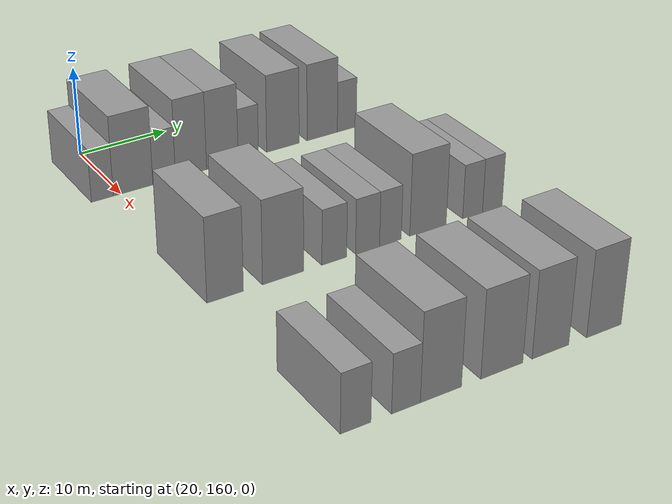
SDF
<sdf version="1.6">
 <world name="default">
  <model name="building_94">
   <static>1</static>
   <pose>25.0000 157.9676 0 0.000000 0.000000 0.000000</pose>
   <link name="link">
    <pose>0 0 3.00 0 0 0</pose>
    <collision name="collision"><geometry><box><size>10.0000 2.4155 6.0000</size></box></geometry></collision>
    <visual name="visual">
     <cast_shadows>0</cast_shadows>
     <geometry><box><size>10.0000 2.4155 6.0000</size></box></geometry>
     <material>
      <script>
       <uri>model://grey_wall/materials/scripts</uri>
       <uri>model://grey_wall/materials/textures</uri>
       <name>vrc/grey_wall</name>
      </script>
     </material>
    </visual>
   </link>
  </model>
  <model name="building_95">
   <static>1</static>
   <pose>25.0000 161.3960 0 0.000000 0.000000 0.000000</pose>
   <link name="link">
    <pose>0 0 4.50 0 0 0</pose>
    <collision name="collision"><geometry><box><size>10.0000 4.4412 9.0000</size></box></geometry></collision>
    <visual name="visual">
     <cast_shadows>0</cast_shadows>
     <geometry><box><size>10.0000 4.4412 9.0000</size></box></geometry>
     <material>
      <script>
       <uri>model://grey_wall/materials/scripts</uri>
       <uri>model://grey_wall/materials/textures</uri>
       <name>vrc/grey_wall</name>
      </script>
     </material>
    </visual>
   </link>
  </model>
  <model name="building_96">
   <static>1</static>
   <pose>25.0000 164.9149 0 0.000000 0.000000 0.000000</pose>
   <link name="link">
    <pose>0 0 3.00 0 0 0</pose>
    <collision name="collision"><geometry><box><size>10.0000 2.5966 6.0000</size></box></geometry></collision>
    <visual name="visual">
     <cast_shadows>0</cast_shadows>
     <geometry><box><size>10.0000 2.5966 6.0000</size></box></geometry>
     <material>
      <script>
       <uri>model://grey_wall/materials/scripts</uri>
       <uri>model://grey_wall/materials/textures</uri>
       <name>vrc/grey_wall</name>
      </script>
     </material>
    </visual>
   </link>
  </model>
  <model name="building_97">
   <static>1</static>
   <pose>25.0000 168.0224 0 0.000000 0.000000 0.000000</pose>
   <link name="link">
    <pose>0 0 4.50 0 0 0</pose>
    <collision name="collision"><geometry><box><size>10.0000 3.6184 9.0000</size></box></geometry></collision>
    <visual name="visual">
     <cast_shadows>0</cast_shadows>
     <geometry><box><size>10.0000 3.6184 9.0000</size></box></geometry>
     <material>
      <script>
       <uri>model://grey_wall/materials/scripts</uri>
       <uri>model://grey_wall/materials/textures</uri>
       <name>vrc/grey_wall</name>
      </script>
     </material>
    </visual>
   </link>
  </model>
  <model name="building_98">
   <static>1</static>
   <pose>25.0000 171.7162 0 0.000000 0.000000 0.000000</pose>
   <link name="link">
    <pose>0 0 4.50 0 0 0</pose>
    <collision name="collision"><geometry><box><size>10.0000 3.7693 9.0000</size></box></geometry></collision>
    <visual name="visual">
     <cast_shadows>0</cast_shadows>
     <geometry><box><size>10.0000 3.7693 9.0000</size></box></geometry>
     <material>
      <script>
       <uri>model://grey_wall/materials/scripts</uri>
       <uri>model://grey_wall/materials/textures</uri>
       <name>vrc/grey_wall</name>
      </script>
     </material>
    </visual>
   </link>
  </model>
  <model name="building_99">
   <static>1</static>
   <pose>25.0000 174.8299 0 0.000000 0.000000 0.000000</pose>
   <link name="link">
    <pose>0 0 3.00 0 0 0</pose>
    <collision name="collision"><geometry><box><size>10.0000 2.4581 6.0000</size></box></geometry></collision>
    <visual name="visual">
     <cast_shadows>0</cast_shadows>
     <geometry><box><size>10.0000 2.4581 6.0000</size></box></geometry>
     <material>
      <script>
       <uri>model://grey_wall/materials/scripts</uri>
       <uri>model://grey_wall/materials/textures</uri>
       <name>vrc/grey_wall</name>
      </script>
     </material>
    </visual>
   </link>
  </model>
  <model name="building_100">
   <static>1</static>
   <pose>25.0000 179.0702 0 0.000000 0.000000 0.000000</pose>
   <link name="link">
    <pose>0 0 4.50 0 0 0</pose>
    <collision name="collision"><geometry><box><size>10.0000 4.0226 9.0000</size></box></geometry></collision>
    <visual name="visual">
     <cast_shadows>0</cast_shadows>
     <geometry><box><size>10.0000 4.0226 9.0000</size></box></geometry>
     <material>
      <script>
       <uri>model://grey_wall/materials/scripts</uri>
       <uri>model://grey_wall/materials/textures</uri>
       <name>vrc/grey_wall</name>
      </script>
     </material>
    </visual>
   </link>
  </model>
  <model name="building_101">
   <static>1</static>
   <pose>25.0000 184.0114 0 0.000000 0.000000 0.000000</pose>
   <link name="link">
    <pose>0 0 4.50 0 0 0</pose>
    <collision name="collision"><geometry><box><size>10.0000 3.8598 9.0000</size></box></geometry></collision>
    <visual name="visual">
     <cast_shadows>0</cast_shadows>
     <geometry><box><size>10.0000 3.8598 9.0000</size></box></geometry>
     <material>
      <script>
       <uri>model://grey_wall/materials/scripts</uri>
       <uri>model://grey_wall/materials/textures</uri>
       <name>vrc/grey_wall</name>
      </script>
     </material>
    </visual>
   </link>
  </model>
  <model name="building_102">
   <static>1</static>
   <pose>25.0000 187.1695 0 0.000000 0.000000 0.000000</pose>
   <link name="link">
    <pose>0 0 3.00 0 0 0</pose>
    <collision name="collision"><geometry><box><size>10.0000 2.4564 6.0000</size></box></geometry></collision>
    <visual name="visual">
     <cast_shadows>0</cast_shadows>
     <geometry><box><size>10.0000 2.4564 6.0000</size></box></geometry>
     <material>
      <script>
       <uri>model://grey_wall/materials/scripts</uri>
       <uri>model://grey_wall/materials/textures</uri>
       <name>vrc/grey_wall</name>
      </script>
     </material>
    </visual>
   </link>
  </model>
  <model name="building_218">
   <static>1</static>
   <pose>47.0000 160.0620 0 0.000000 0.000000 0.000000</pose>
   <link name="link">
    <pose>0 0 4.50 0 0 0</pose>
    <collision name="collision"><geometry><box><size>10.0000 3.7848 9.0000</size></box></geometry></collision>
    <visual name="visual">
     <cast_shadows>0</cast_shadows>
     <geometry><box><size>10.0000 3.7848 9.0000</size></box></geometry>
     <material>
      <script>
       <uri>model://grey_wall/materials/scripts</uri>
       <uri>model://grey_wall/materials/textures</uri>
       <name>vrc/grey_wall</name>
      </script>
     </material>
    </visual>
   </link>
  </model>
  <model name="building_219">
   <static>1</static>
   <pose>47.0000 166.1638 0 0.000000 0.000000 0.000000</pose>
   <link name="link">
    <pose>0 0 4.50 0 0 0</pose>
    <collision name="collision"><geometry><box><size>10.0000 4.4187 9.0000</size></box></geometry></collision>
    <visual name="visual">
     <cast_shadows>0</cast_shadows>
     <geometry><box><size>10.0000 4.4187 9.0000</size></box></geometry>
     <material>
      <script>
       <uri>model://grey_wall/materials/scripts</uri>
       <uri>model://grey_wall/materials/textures</uri>
       <name>vrc/grey_wall</name>
      </script>
     </material>
    </visual>
   </link>
  </model>
  <model name="building_220">
   <static>1</static>
   <pose>47.0000 171.7502 0 0.000000 0.000000 0.000000</pose>
   <link name="link">
    <pose>0 0 3.00 0 0 0</pose>
    <collision name="collision"><geometry><box><size>10.0000 2.7543 6.0000</size></box></geometry></collision>
    <visual name="visual">
     <cast_shadows>0</cast_shadows>
     <geometry><box><size>10.0000 2.7543 6.0000</size></box></geometry>
     <material>
      <script>
       <uri>model://grey_wall/materials/scripts</uri>
       <uri>model://grey_wall/materials/textures</uri>
       <name>vrc/grey_wall</name>
      </script>
     </material>
    </visual>
   </link>
  </model>
  <model name="building_221">
   <static>1</static>
   <pose>47.0000 175.4920 0 0.000000 0.000000 0.000000</pose>
   <link name="link">
    <pose>0 0 3.00 0 0 0</pose>
    <collision name="collision"><geometry><box><size>10.0000 2.7292 6.0000</size></box></geometry></collision>
    <visual name="visual">
     <cast_shadows>0</cast_shadows>
     <geometry><box><size>10.0000 2.7292 6.0000</size></box></geometry>
     <material>
      <script>
       <uri>model://grey_wall/materials/scripts</uri>
       <uri>model://grey_wall/materials/textures</uri>
       <name>vrc/grey_wall</name>
      </script>
     </material>
    </visual>
   </link>
  </model>
  <model name="building_222">
   <static>1</static>
   <pose>47.0000 178.1100 0 0.000000 0.000000 0.000000</pose>
   <link name="link">
    <pose>0 0 3.00 0 0 0</pose>
    <collision name="collision"><geometry><box><size>10.0000 2.5068 6.0000</size></box></geometry></collision>
    <visual name="visual">
     <cast_shadows>0</cast_shadows>
     <geometry><box><size>10.0000 2.5068 6.0000</size></box></geometry>
     <material>
      <script>
       <uri>model://grey_wall/materials/scripts</uri>
       <uri>model://grey_wall/materials/textures</uri>
       <name>vrc/grey_wall</name>
      </script>
     </material>
    </visual>
   </link>
  </model>
  <model name="building_223">
   <static>1</static>
   <pose>47.0000 182.5260 0 0.000000 0.000000 0.000000</pose>
   <link name="link">
    <pose>0 0 4.50 0 0 0</pose>
    <collision name="collision"><geometry><box><size>10.0000 4.3251 9.0000</size></box></geometry></collision>
    <visual name="visual">
     <cast_shadows>0</cast_shadows>
     <geometry><box><size>10.0000 4.3251 9.0000</size></box></geometry>
     <material>
      <script>
       <uri>model://grey_wall/materials/scripts</uri>
       <uri>model://grey_wall/materials/textures</uri>
       <name>vrc/grey_wall</name>
      </script>
     </material>
    </visual>
   </link>
  </model>
  <model name="building_224">
   <static>1</static>
   <pose>47.0000 187.9058 0 0.000000 0.000000 0.000000</pose>
   <link name="link">
    <pose>0 0 3.00 0 0 0</pose>
    <collision name="collision"><geometry><box><size>10.0000 2.4345 6.0000</size></box></geometry></collision>
    <visual name="visual">
     <cast_shadows>0</cast_shadows>
     <geometry><box><size>10.0000 2.4345 6.0000</size></box></geometry>
     <material>
      <script>
       <uri>model://grey_wall/materials/scripts</uri>
       <uri>model://grey_wall/materials/textures</uri>
       <name>vrc/grey_wall</name>
      </script>
     </material>
    </visual>
   </link>
  </model>
  <model name="building_225">
   <static>1</static>
   <pose>47.0000 190.3425 0 0.000000 0.000000 0.000000</pose>
   <link name="link">
    <pose>0 0 3.00 0 0 0</pose>
    <collision name="collision"><geometry><box><size>10.0000 2.4389 6.0000</size></box></geometry></collision>
    <visual name="visual">
     <cast_shadows>0</cast_shadows>
     <geometry><box><size>10.0000 2.4389 6.0000</size></box></geometry>
     <material>
      <script>
       <uri>model://grey_wall/materials/scripts</uri>
       <uri>model://grey_wall/materials/textures</uri>
       <name>vrc/grey_wall</name>
      </script>
     </material>
    </visual>
   </link>
  </model>
  <model name="building_340">
   <static>1</static>
   <pose>69.0000 159.9676 0 0.000000 0.000000 0.000000</pose>
   <link name="link">
    <pose>0 0 3.00 0 0 0</pose>
    <collision name="collision"><geometry><box><size>10.0000 2.9197 6.0000</size></box></geometry></collision>
    <visual name="visual">
     <cast_shadows>0</cast_shadows>
     <geometry><box><size>10.0000 2.9197 6.0000</size></box></geometry>
     <material>
      <script>
       <uri>model://grey_wall/materials/scripts</uri>
       <uri>model://grey_wall/materials/textures</uri>
       <name>vrc/grey_wall</name>
      </script>
     </material>
    </visual>
   </link>
  </model>
  <model name="building_341">
   <static>1</static>
   <pose>69.0000 164.8491 0 0.000000 0.000000 0.000000</pose>
   <link name="link">
    <pose>0 0 3.00 0 0 0</pose>
    <collision name="collision"><geometry><box><size>10.0000 2.8434 6.0000</size></box></geometry></collision>
    <visual name="visual">
     <cast_shadows>0</cast_shadows>
     <geometry><box><size>10.0000 2.8434 6.0000</size></box></geometry>
     <material>
      <script>
       <uri>model://grey_wall/materials/scripts</uri>
       <uri>model://grey_wall/materials/textures</uri>
       <name>vrc/grey_wall</name>
      </script>
     </material>
    </visual>
   </link>
  </model>
  <model name="building_342">
   <static>1</static>
   <pose>69.0000 168.3528 0 0.000000 0.000000 0.000000</pose>
   <link name="link">
    <pose>0 0 4.50 0 0 0</pose>
    <collision name="collision"><geometry><box><size>10.0000 4.1639 9.0000</size></box></geometry></collision>
    <visual name="visual">
     <cast_shadows>0</cast_shadows>
     <geometry><box><size>10.0000 4.1639 9.0000</size></box></geometry>
     <material>
      <script>
       <uri>model://grey_wall/materials/scripts</uri>
       <uri>model://grey_wall/materials/textures</uri>
       <name>vrc/grey_wall</name>
      </script>
     </material>
    </visual>
   </link>
  </model>
  <model name="building_343">
   <static>1</static>
   <pose>69.0000 174.6592 0 0.000000 0.000000 0.000000</pose>
   <link name="link">
    <pose>0 0 4.50 0 0 0</pose>
    <collision name="collision"><geometry><box><size>10.0000 4.4489 9.0000</size></box></geometry></collision>
    <visual name="visual">
     <cast_shadows>0</cast_shadows>
     <geometry><box><size>10.0000 4.4489 9.0000</size></box></geometry>
     <material>
      <script>
       <uri>model://grey_wall/materials/scripts</uri>
       <uri>model://grey_wall/materials/textures</uri>
       <name>vrc/grey_wall</name>
      </script>
     </material>
    </visual>
   </link>
  </model>
  <model name="building_344">
   <static>1</static>
   <pose>69.0000 179.8968 0 0.000000 0.000000 0.000000</pose>
   <link name="link">
    <pose>0 0 4.50 0 0 0</pose>
    <collision name="collision"><geometry><box><size>10.0000 4.0262 9.0000</size></box></geometry></collision>
    <visual name="visual">
     <cast_shadows>0</cast_shadows>
     <geometry><box><size>10.0000 4.0262 9.0000</size></box></geometry>
     <material>
      <script>
       <uri>model://grey_wall/materials/scripts</uri>
       <uri>model://grey_wall/materials/textures</uri>
       <name>vrc/grey_wall</name>
      </script>
     </material>
    </visual>
   </link>
  </model>
  <model name="building_345">
   <static>1</static>
   <pose>69.0000 185.8762 0 0.000000 0.000000 0.000000</pose>
   <link name="link">
    <pose>0 0 4.50 0 0 0</pose>
    <collision name="collision"><geometry><box><size>10.0000 3.9327 9.0000</size></box></geometry></collision>
    <visual name="visual">
     <cast_shadows>0</cast_shadows>
     <geometry><box><size>10.0000 3.9327 9.0000</size></box></geometry>
     <material>
      <script>
       <uri>model://grey_wall/materials/scripts</uri>
       <uri>model://grey_wall/materials/textures</uri>
       <name>vrc/grey_wall</name>
      </script>
     </material>
    </visual>
   </link>
  </model>
 </world>
</sdf>
